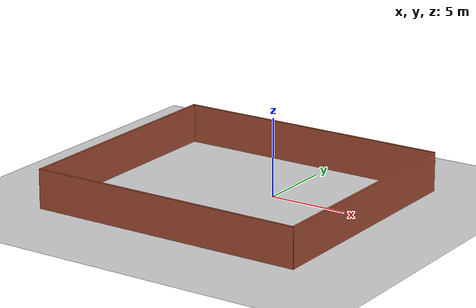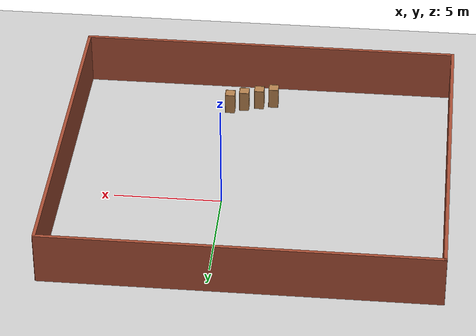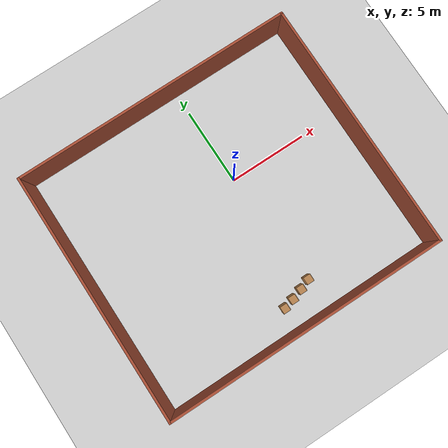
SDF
<sdf version="1.7">
 <world name="default">
  <light name="sun" type="directional">
   <pose>0 0 10 0 -0 0</pose>
   <diffuse>0.8 0.8 0.8 1</diffuse>
   <specular>0.2 0.2 0.2 1</specular>
   <attenuation>
    <range>1000</range>
    <constant>0.9</constant>
    <linear>0.01</linear>
    <quadratic>0.001</quadratic>
   </attenuation>
   <direction>-0.5 0.1 -0.9</direction>
   <spot><inner_angle>0</inner_angle><outer_angle>0</outer_angle><falloff>0</falloff></spot>
  </light>
  <model name="ground_plane">
   <static>1</static>
   <link name="link">
    <collision name="collision">
     <geometry><plane><normal>0 0 1</normal><size>100 100</size></plane></geometry>
     <surface>
      <contact><collide_bitmask>65535</collide_bitmask></contact>
      <friction><ode><mu>100</mu><mu2>50</mu2></ode></friction>
     </surface>
    </collision>
    <visual name="visual">
     <cast_shadows>0</cast_shadows>
     <geometry><plane><normal>0 0 1</normal><size>100 100</size></plane></geometry>
     <material>
      <script><uri>file://media/materials/scripts/gazebo.material</uri><name>Gazebo/Grey</name></script>
     </material>
    </visual>
   </link>
  </model>
  <gravity>0 0 -9.8</gravity>
  <magnetic_field>6e-06 2.3e-05 -4.2e-05</magnetic_field>
  <atmosphere type="adiabatic"/>
  <physics type="ode">
   <max_step_size>0.001</max_step_size>
   <real_time_factor>1</real_time_factor>
   <real_time_update_rate>1000</real_time_update_rate>
  </physics>
  <scene><ambient>0.4 0.4 0.4 1</ambient><background>0.7 0.7 0.7 1</background><shadows>1</shadows></scene>
  <spherical_coordinates>
   <surface_model>EARTH_WGS84</surface_model>
   <latitude_deg>0</latitude_deg>
   <longitude_deg>0</longitude_deg>
   <elevation>0</elevation>
   <heading_deg>0</heading_deg>
  </spherical_coordinates>
  <model name="Untitled">
   <link name="Wall_5">
    <pose>7e-06 9.7284 0 0 -0 3.14159</pose>
    <inertial>
     <mass>1</mass>
     <inertia><ixx>1</ixx><ixy>0</ixy><ixz>0</ixz><iyy>1</iyy><iyz>0</iyz><izz>1</izz></inertia>
    </inertial>
    <visual name="Wall_5_Visual">
     <pose>0 0 1.25 0 -0 0</pose>
     <geometry><box><size>18 0.15 2.5</size></box></geometry>
     <material>
      <script><uri>file://media/materials/scripts/gazebo.material</uri><name>Gazebo/Bricks</name></script>
      <ambient>1 1 1 1</ambient>
      <shader type="pixel"><normal_map>__default__</normal_map></shader>
      <diffuse>1 1 1 1</diffuse>
      <specular>0.2 0.2 0.2 1</specular>
      <emissive>0 0 0 1</emissive>
     </material>
     <meta><layer>0</layer></meta>
    </visual>
    <collision name="Wall_5_Collision">
     <pose>0 0 1.25 0 -0 0</pose>
     <geometry><box><size>16 0.15 2.5</size></box></geometry>
     <surface>
      <friction>
       <ode><mu>1</mu><mu2>1</mu2><fdir1>0 0 0</fdir1><slip1>0</slip1><slip2>0</slip2></ode>
       <torsional>
        <coefficient>1</coefficient>
        <patch_radius>0</patch_radius>
        <surface_radius>0</surface_radius>
        <use_patch_radius>1</use_patch_radius>
        <ode><slip>0</slip></ode>
       </torsional>
      </friction>
      <bounce><restitution_coefficient>0</restitution_coefficient><threshold>1e+06</threshold></bounce>
      <contact>
       <collide_without_contact>0</collide_without_contact>
       <collide_without_contact_bitmask>1</collide_without_contact_bitmask>
       <collide_bitmask>1</collide_bitmask>
       <ode>
        <soft_cfm>0</soft_cfm>
        <soft_erp>0.2</soft_erp>
        <kp>1e+13</kp>
        <kd>1</kd>
        <max_vel>0.01</max_vel>
        <min_depth>0</min_depth>
       </ode>
       <bullet>
        <split_impulse>1</split_impulse>
        <split_impulse_penetration_threshold>-0.01</split_impulse_penetration_threshold>
        <soft_cfm>0</soft_cfm>
        <soft_erp>0.2</soft_erp>
        <kp>1e+13</kp>
        <kd>1</kd>
       </bullet>
      </contact>
     </surface>
    </collision>
   </link>
   <link name="Wall_6">
    <pose>-8.93169 1.78397 0 0 0 -1.5708</pose>
    <inertial>
     <mass>1</mass>
     <inertia><ixx>1</ixx><ixy>0</ixy><ixz>0</ixz><iyy>1</iyy><iyz>0</iyz><izz>1</izz></inertia>
    </inertial>
    <visual name="Wall_6_Visual">
     <pose>0 0 1.25 0 -0 0</pose>
     <geometry><box><size>16 0.15 2.5</size></box></geometry>
     <material>
      <script><uri>file://media/materials/scripts/gazebo.material</uri><name>Gazebo/Bricks</name></script>
      <ambient>1 1 1 1</ambient>
      <shader type="pixel"><normal_map>__default__</normal_map></shader>
      <diffuse>1 1 1 1</diffuse>
      <specular>0.2 0.2 0.2 1</specular>
      <emissive>0 0 0 1</emissive>
     </material>
     <meta><layer>0</layer></meta>
    </visual>
    <collision name="Wall_6_Collision">
     <pose>0 0 1.25 0 -0 0</pose>
     <geometry><box><size>14 0.15 2.5</size></box></geometry>
     <surface>
      <friction>
       <ode><mu>1</mu><mu2>1</mu2><fdir1>0 0 0</fdir1><slip1>0</slip1><slip2>0</slip2></ode>
       <torsional>
        <coefficient>1</coefficient>
        <patch_radius>0</patch_radius>
        <surface_radius>0</surface_radius>
        <use_patch_radius>1</use_patch_radius>
        <ode><slip>0</slip></ode>
       </torsional>
      </friction>
      <bounce><restitution_coefficient>0</restitution_coefficient><threshold>1e+06</threshold></bounce>
      <contact>
       <collide_without_contact>0</collide_without_contact>
       <collide_without_contact_bitmask>1</collide_without_contact_bitmask>
       <collide_bitmask>1</collide_bitmask>
       <ode>
        <soft_cfm>0</soft_cfm>
        <soft_erp>0.2</soft_erp>
        <kp>1e+13</kp>
        <kd>1</kd>
        <max_vel>0.01</max_vel>
        <min_depth>0</min_depth>
       </ode>
       <bullet>
        <split_impulse>1</split_impulse>
        <split_impulse_penetration_threshold>-0.01</split_impulse_penetration_threshold>
        <soft_cfm>0</soft_cfm>
        <soft_erp>0.2</soft_erp>
        <kp>1e+13</kp>
        <kd>1</kd>
       </bullet>
      </contact>
     </surface>
    </collision>
   </link>
   <link name="Wall_7">
    <pose>0 -6.15167 0 0 -0 0</pose>
    <inertial>
     <mass>1</mass>
     <inertia><ixx>1</ixx><ixy>0</ixy><ixz>0</ixz><iyy>1</iyy><iyz>0</iyz><izz>1</izz></inertia>
    </inertial>
    <visual name="Wall_7_Visual">
     <pose>0 0 1.25 0 -0 0</pose>
     <geometry><box><size>18 0.15 2.5</size></box></geometry>
     <material>
      <script><uri>file://media/materials/scripts/gazebo.material</uri><name>Gazebo/Bricks</name></script>
      <ambient>1 1 1 1</ambient>
      <shader type="pixel"><normal_map>__default__</normal_map></shader>
      <diffuse>1 1 1 1</diffuse>
      <specular>0.2 0.2 0.2 1</specular>
      <emissive>0 0 0 1</emissive>
     </material>
     <meta><layer>0</layer></meta>
    </visual>
    <collision name="Wall_7_Collision">
     <pose>0 0 1.25 0 -0 0</pose>
     <geometry><box><size>16 0.15 2.5</size></box></geometry>
     <surface>
      <friction>
       <ode><mu>1</mu><mu2>1</mu2><fdir1>0 0 0</fdir1><slip1>0</slip1><slip2>0</slip2></ode>
       <torsional>
        <coefficient>1</coefficient>
        <patch_radius>0</patch_radius>
        <surface_radius>0</surface_radius>
        <use_patch_radius>1</use_patch_radius>
        <ode><slip>0</slip></ode>
       </torsional>
      </friction>
      <bounce><restitution_coefficient>0</restitution_coefficient><threshold>1e+06</threshold></bounce>
      <contact>
       <collide_without_contact>0</collide_without_contact>
       <collide_without_contact_bitmask>1</collide_without_contact_bitmask>
       <collide_bitmask>1</collide_bitmask>
       <ode>
        <soft_cfm>0</soft_cfm>
        <soft_erp>0.2</soft_erp>
        <kp>1e+13</kp>
        <kd>1</kd>
        <max_vel>0.01</max_vel>
        <min_depth>0</min_depth>
       </ode>
       <bullet>
        <split_impulse>1</split_impulse>
        <split_impulse_penetration_threshold>-0.01</split_impulse_penetration_threshold>
        <soft_cfm>0</soft_cfm>
        <soft_erp>0.2</soft_erp>
        <kp>1e+13</kp>
        <kd>1</kd>
       </bullet>
      </contact>
     </surface>
    </collision>
   </link>
   <link name="Wall_8">
    <pose>8.94145 1.78609 0 0 -0 1.5708</pose>
    <inertial>
     <mass>1</mass>
     <inertia><ixx>1</ixx><ixy>0</ixy><ixz>0</ixz><iyy>1</iyy><iyz>0</iyz><izz>1</izz></inertia>
    </inertial>
    <visual name="Wall_8_Visual">
     <pose>0 0 1.25 0 -0 0</pose>
     <geometry><box><size>16 0.15 2.5</size></box></geometry>
     <material>
      <script><uri>file://media/materials/scripts/gazebo.material</uri><name>Gazebo/Bricks</name></script>
      <ambient>1 1 1 1</ambient>
      <shader type="pixel"><normal_map>__default__</normal_map></shader>
      <diffuse>1 1 1 1</diffuse>
      <specular>0.2 0.2 0.2 1</specular>
      <emissive>0 0 0 1</emissive>
     </material>
     <meta><layer>0</layer></meta>
    </visual>
    <collision name="Wall_8_Collision">
     <pose>0 0 1.25 0 -0 0</pose>
     <geometry><box><size>14 0.15 2.5</size></box></geometry>
     <surface>
      <friction>
       <ode><mu>1</mu><mu2>1</mu2><fdir1>0 0 0</fdir1><slip1>0</slip1><slip2>0</slip2></ode>
       <torsional>
        <coefficient>1</coefficient>
        <patch_radius>0</patch_radius>
        <surface_radius>0</surface_radius>
        <use_patch_radius>1</use_patch_radius>
        <ode><slip>0</slip></ode>
       </torsional>
      </friction>
      <bounce><restitution_coefficient>0</restitution_coefficient><threshold>1e+06</threshold></bounce>
      <contact>
       <collide_without_contact>0</collide_without_contact>
       <collide_without_contact_bitmask>1</collide_without_contact_bitmask>
       <collide_bitmask>1</collide_bitmask>
       <ode>
        <soft_cfm>0</soft_cfm>
        <soft_erp>0.2</soft_erp>
        <kp>1e+13</kp>
        <kd>1</kd>
        <max_vel>0.01</max_vel>
        <min_depth>0</min_depth>
       </ode>
       <bullet>
        <split_impulse>1</split_impulse>
        <split_impulse_penetration_threshold>-0.01</split_impulse_penetration_threshold>
        <soft_cfm>0</soft_cfm>
        <soft_erp>0.2</soft_erp>
        <kp>1e+13</kp>
        <kd>1</kd>
       </bullet>
      </contact>
     </surface>
    </collision>
   </link>
   <static>1</static>
   <pose>-1.42993 -3.32043 0 0 -0 0</pose>
  </model>
  <model name="cabinet">
   <link name="cabinet_bottom_plate">
    <inertial>
     <pose>0 0 -1 0 -0 0</pose>
     <inertia><ixx>2.05</ixx><ixy>0</ixy><ixz>0</ixz><iyy>2.05</iyy><iyz>0</iyz><izz>2.05</izz></inertia>
     <mass>25</mass>
    </inertial>
    <visual name="cabinet_bottom_plate_geom_cabinet_right_plate_visual">
     <pose>0 -0.235 0.51 0 -0 0</pose>
     <geometry><box><size>0.45 0.02 1.02</size></box></geometry>
     <material>
      <script><uri>file://media/materials/scripts/gazebo.material</uri><name>Gazebo/Wood</name></script>
      <shader type="pixel"/>
     </material>
    </visual>
    <visual name="cabinet_bottom_plate_geom_cabinet_middle_plate_visual">
     <pose>0 0 0.51 0 -0 0</pose>
     <geometry><box><size>0.45 0.45 0.02</size></box></geometry>
     <material>
      <script><uri>file://media/materials/scripts/gazebo.material</uri><name>Gazebo/Wood</name></script>
      <shader type="pixel"/>
     </material>
    </visual>
    <visual name="cabinet_bottom_plate_geom_cabinet_left_plate_visual">
     <pose>0 0.235 0.51 0 -0 0</pose>
     <geometry><box><size>0.45 0.02 1.02</size></box></geometry>
     <material>
      <script><uri>file://media/materials/scripts/gazebo.material</uri><name>Gazebo/Wood</name></script>
      <shader type="pixel"/>
     </material>
    </visual>
    <visual name="cabinet_bottom_plate_geom_cabinet_back_plate_visual">
     <pose>0.235 0 0.51 0 -0 0</pose>
     <geometry><box><size>0.02 0.45 1.02</size></box></geometry>
     <material>
      <script><uri>file://media/materials/scripts/gazebo.material</uri><name>Gazebo/Wood</name></script>
      <shader type="pixel"/>
     </material>
    </visual>
    <visual name="cabinet_bottom_plate_geom_visual">
     <pose>0 0 0.01 0 -0 0</pose>
     <geometry><box><size>0.45 0.45 0.02</size></box></geometry>
     <material>
      <script><uri>file://media/materials/scripts/gazebo.material</uri><name>Gazebo/Wood</name></script>
      <shader type="pixel"/>
     </material>
    </visual>
    <visual name="cabinet_bottom_plate_geom_cabinet_top_plate_visual">
     <pose>0 0 1.01 0 -0 0</pose>
     <geometry><box><size>0.45 0.45 0.02</size></box></geometry>
     <material>
      <script><uri>file://media/materials/scripts/gazebo.material</uri><name>Gazebo/Wood</name></script>
      <shader type="pixel"/>
     </material>
    </visual>
    <collision name="cabinet_bottom_plate_geom_cabinet_left_plate">
     <pose>0 0.235 0.51 0 -0 0</pose>
     <geometry><box><size>0.45 0.02 1.02</size></box></geometry>
     <surface>
      <friction>
       <ode><mu>1</mu><mu2>1</mu2><fdir1>0 0 0</fdir1><slip1>0</slip1><slip2>0</slip2></ode>
       <torsional>
        <coefficient>1</coefficient>
        <patch_radius>0</patch_radius>
        <surface_radius>0</surface_radius>
        <use_patch_radius>1</use_patch_radius>
        <ode><slip>0</slip></ode>
       </torsional>
      </friction>
      <bounce><restitution_coefficient>0</restitution_coefficient><threshold>1e+06</threshold></bounce>
      <contact>
       <collide_without_contact>0</collide_without_contact>
       <collide_without_contact_bitmask>1</collide_without_contact_bitmask>
       <collide_bitmask>1</collide_bitmask>
       <ode>
        <soft_cfm>0</soft_cfm>
        <soft_erp>0.2</soft_erp>
        <kp>1e+13</kp>
        <kd>1</kd>
        <max_vel>0.01</max_vel>
        <min_depth>0</min_depth>
       </ode>
       <bullet>
        <split_impulse>1</split_impulse>
        <split_impulse_penetration_threshold>-0.01</split_impulse_penetration_threshold>
        <soft_cfm>0</soft_cfm>
        <soft_erp>0.2</soft_erp>
        <kp>1e+13</kp>
        <kd>1</kd>
       </bullet>
      </contact>
     </surface>
    </collision>
    <collision name="cabinet_bottom_plate_geom_cabinet_right_plate">
     <pose>0 -0.235 0.51 0 -0 0</pose>
     <geometry><box><size>0.45 0.02 1.02</size></box></geometry>
     <surface>
      <friction>
       <ode><mu>1</mu><mu2>1</mu2><fdir1>0 0 0</fdir1><slip1>0</slip1><slip2>0</slip2></ode>
       <torsional>
        <coefficient>1</coefficient>
        <patch_radius>0</patch_radius>
        <surface_radius>0</surface_radius>
        <use_patch_radius>1</use_patch_radius>
        <ode><slip>0</slip></ode>
       </torsional>
      </friction>
      <bounce><restitution_coefficient>0</restitution_coefficient><threshold>1e+06</threshold></bounce>
      <contact>
       <collide_without_contact>0</collide_without_contact>
       <collide_without_contact_bitmask>1</collide_without_contact_bitmask>
       <collide_bitmask>1</collide_bitmask>
       <ode>
        <soft_cfm>0</soft_cfm>
        <soft_erp>0.2</soft_erp>
        <kp>1e+13</kp>
        <kd>1</kd>
        <max_vel>0.01</max_vel>
        <min_depth>0</min_depth>
       </ode>
       <bullet>
        <split_impulse>1</split_impulse>
        <split_impulse_penetration_threshold>-0.01</split_impulse_penetration_threshold>
        <soft_cfm>0</soft_cfm>
        <soft_erp>0.2</soft_erp>
        <kp>1e+13</kp>
        <kd>1</kd>
       </bullet>
      </contact>
     </surface>
    </collision>
    <collision name="cabinet_bottom_plate_geom">
     <pose>0 0 0.01 0 -0 0</pose>
     <geometry><box><size>0.45 0.45 0.02</size></box></geometry>
     <surface>
      <friction>
       <ode><mu>1</mu><mu2>1</mu2><fdir1>0 0 0</fdir1><slip1>0</slip1><slip2>0</slip2></ode>
       <torsional>
        <coefficient>1</coefficient>
        <patch_radius>0</patch_radius>
        <surface_radius>0</surface_radius>
        <use_patch_radius>1</use_patch_radius>
        <ode><slip>0</slip></ode>
       </torsional>
      </friction>
      <bounce><restitution_coefficient>0</restitution_coefficient><threshold>1e+06</threshold></bounce>
      <contact>
       <collide_without_contact>0</collide_without_contact>
       <collide_without_contact_bitmask>1</collide_without_contact_bitmask>
       <collide_bitmask>1</collide_bitmask>
       <ode>
        <soft_cfm>0</soft_cfm>
        <soft_erp>0.2</soft_erp>
        <kp>1e+13</kp>
        <kd>1</kd>
        <max_vel>0.01</max_vel>
        <min_depth>0</min_depth>
       </ode>
       <bullet>
        <split_impulse>1</split_impulse>
        <split_impulse_penetration_threshold>-0.01</split_impulse_penetration_threshold>
        <soft_cfm>0</soft_cfm>
        <soft_erp>0.2</soft_erp>
        <kp>1e+13</kp>
        <kd>1</kd>
       </bullet>
      </contact>
     </surface>
    </collision>
    <collision name="cabinet_bottom_plate_geom_cabinet_middle_plate">
     <pose>0 0 0.51 0 -0 0</pose>
     <geometry><box><size>0.45 0.45 0.02</size></box></geometry>
     <surface>
      <friction>
       <ode><mu>1</mu><mu2>1</mu2><fdir1>0 0 0</fdir1><slip1>0</slip1><slip2>0</slip2></ode>
       <torsional>
        <coefficient>1</coefficient>
        <patch_radius>0</patch_radius>
        <surface_radius>0</surface_radius>
        <use_patch_radius>1</use_patch_radius>
        <ode><slip>0</slip></ode>
       </torsional>
      </friction>
      <bounce><restitution_coefficient>0</restitution_coefficient><threshold>1e+06</threshold></bounce>
      <contact>
       <collide_without_contact>0</collide_without_contact>
       <collide_without_contact_bitmask>1</collide_without_contact_bitmask>
       <collide_bitmask>1</collide_bitmask>
       <ode>
        <soft_cfm>0</soft_cfm>
        <soft_erp>0.2</soft_erp>
        <kp>1e+13</kp>
        <kd>1</kd>
        <max_vel>0.01</max_vel>
        <min_depth>0</min_depth>
       </ode>
       <bullet>
        <split_impulse>1</split_impulse>
        <split_impulse_penetration_threshold>-0.01</split_impulse_penetration_threshold>
        <soft_cfm>0</soft_cfm>
        <soft_erp>0.2</soft_erp>
        <kp>1e+13</kp>
        <kd>1</kd>
       </bullet>
      </contact>
     </surface>
    </collision>
    <collision name="cabinet_bottom_plate_geom_cabinet_top_plate">
     <pose>0 0 1.01 0 -0 0</pose>
     <geometry><box><size>0.45 0.45 0.02</size></box></geometry>
     <surface>
      <friction>
       <ode><mu>1</mu><mu2>1</mu2><fdir1>0 0 0</fdir1><slip1>0</slip1><slip2>0</slip2></ode>
       <torsional>
        <coefficient>1</coefficient>
        <patch_radius>0</patch_radius>
        <surface_radius>0</surface_radius>
        <use_patch_radius>1</use_patch_radius>
        <ode><slip>0</slip></ode>
       </torsional>
      </friction>
      <bounce><restitution_coefficient>0</restitution_coefficient><threshold>1e+06</threshold></bounce>
      <contact>
       <collide_without_contact>0</collide_without_contact>
       <collide_without_contact_bitmask>1</collide_without_contact_bitmask>
       <collide_bitmask>1</collide_bitmask>
       <ode>
        <soft_cfm>0</soft_cfm>
        <soft_erp>0.2</soft_erp>
        <kp>1e+13</kp>
        <kd>1</kd>
        <max_vel>0.01</max_vel>
        <min_depth>0</min_depth>
       </ode>
       <bullet>
        <split_impulse>1</split_impulse>
        <split_impulse_penetration_threshold>-0.01</split_impulse_penetration_threshold>
        <soft_cfm>0</soft_cfm>
        <soft_erp>0.2</soft_erp>
        <kp>1e+13</kp>
        <kd>1</kd>
       </bullet>
      </contact>
     </surface>
    </collision>
    <collision name="cabinet_bottom_plate_geom_cabinet_back_plate">
     <pose>0.235 0 0.51 0 -0 0</pose>
     <geometry><box><size>0.02 0.45 1.02</size></box></geometry>
     <surface>
      <friction>
       <ode><mu>1</mu><mu2>1</mu2><fdir1>0 0 0</fdir1><slip1>0</slip1><slip2>0</slip2></ode>
       <torsional>
        <coefficient>1</coefficient>
        <patch_radius>0</patch_radius>
        <surface_radius>0</surface_radius>
        <use_patch_radius>1</use_patch_radius>
        <ode><slip>0</slip></ode>
       </torsional>
      </friction>
      <bounce><restitution_coefficient>0</restitution_coefficient><threshold>1e+06</threshold></bounce>
      <contact>
       <collide_without_contact>0</collide_without_contact>
       <collide_without_contact_bitmask>1</collide_without_contact_bitmask>
       <collide_bitmask>1</collide_bitmask>
       <ode>
        <soft_cfm>0</soft_cfm>
        <soft_erp>0.2</soft_erp>
        <kp>1e+13</kp>
        <kd>1</kd>
        <max_vel>0.01</max_vel>
        <min_depth>0</min_depth>
       </ode>
       <bullet>
        <split_impulse>1</split_impulse>
        <split_impulse_penetration_threshold>-0.01</split_impulse_penetration_threshold>
        <soft_cfm>0</soft_cfm>
        <soft_erp>0.2</soft_erp>
        <kp>1e+13</kp>
        <kd>1</kd>
       </bullet>
      </contact>
     </surface>
    </collision>
   </link>
   <static>1</static>
   <pose>-1.73964 -8.00551 0 0 -0 0</pose>
  </model>
  <model name="cabinet_clone">
   <link name="cabinet_bottom_plate">
    <inertial>
     <pose>0 0 -1 0 -0 0</pose>
     <inertia><ixx>2.05</ixx><ixy>0</ixy><ixz>0</ixz><iyy>2.05</iyy><iyz>0</iyz><izz>2.05</izz></inertia>
     <mass>25</mass>
    </inertial>
    <visual name="cabinet_bottom_plate_geom_cabinet_right_plate_visual">
     <pose>0 -0.235 0.51 0 -0 0</pose>
     <geometry><box><size>0.45 0.02 1.02</size></box></geometry>
     <material>
      <script><uri>file://media/materials/scripts/gazebo.material</uri><name>Gazebo/Wood</name></script>
      <shader type="pixel"/>
     </material>
    </visual>
    <visual name="cabinet_bottom_plate_geom_cabinet_middle_plate_visual">
     <pose>0 0 0.51 0 -0 0</pose>
     <geometry><box><size>0.45 0.45 0.02</size></box></geometry>
     <material>
      <script><uri>file://media/materials/scripts/gazebo.material</uri><name>Gazebo/Wood</name></script>
      <shader type="pixel"/>
     </material>
    </visual>
    <visual name="cabinet_bottom_plate_geom_cabinet_left_plate_visual">
     <pose>0 0.235 0.51 0 -0 0</pose>
     <geometry><box><size>0.45 0.02 1.02</size></box></geometry>
     <material>
      <script><uri>file://media/materials/scripts/gazebo.material</uri><name>Gazebo/Wood</name></script>
      <shader type="pixel"/>
     </material>
    </visual>
    <visual name="cabinet_bottom_plate_geom_cabinet_back_plate_visual">
     <pose>0.235 0 0.51 0 -0 0</pose>
     <geometry><box><size>0.02 0.45 1.02</size></box></geometry>
     <material>
      <script><uri>file://media/materials/scripts/gazebo.material</uri><name>Gazebo/Wood</name></script>
      <shader type="pixel"/>
     </material>
    </visual>
    <visual name="cabinet_bottom_plate_geom_visual">
     <pose>0 0 0.01 0 -0 0</pose>
     <geometry><box><size>0.45 0.45 0.02</size></box></geometry>
     <material>
      <script><uri>file://media/materials/scripts/gazebo.material</uri><name>Gazebo/Wood</name></script>
      <shader type="pixel"/>
     </material>
    </visual>
    <visual name="cabinet_bottom_plate_geom_cabinet_top_plate_visual">
     <pose>0 0 1.01 0 -0 0</pose>
     <geometry><box><size>0.45 0.45 0.02</size></box></geometry>
     <material>
      <script><uri>file://media/materials/scripts/gazebo.material</uri><name>Gazebo/Wood</name></script>
      <shader type="pixel"/>
     </material>
    </visual>
    <collision name="cabinet_bottom_plate_geom_cabinet_left_plate">
     <pose>0 0.235 0.51 0 -0 0</pose>
     <geometry><box><size>0.45 0.02 1.02</size></box></geometry>
     <surface>
      <friction>
       <ode><mu>1</mu><mu2>1</mu2><fdir1>0 0 0</fdir1><slip1>0</slip1><slip2>0</slip2></ode>
       <torsional>
        <coefficient>1</coefficient>
        <patch_radius>0</patch_radius>
        <surface_radius>0</surface_radius>
        <use_patch_radius>1</use_patch_radius>
        <ode><slip>0</slip></ode>
       </torsional>
      </friction>
      <bounce><restitution_coefficient>0</restitution_coefficient><threshold>1e+06</threshold></bounce>
      <contact>
       <collide_without_contact>0</collide_without_contact>
       <collide_without_contact_bitmask>1</collide_without_contact_bitmask>
       <collide_bitmask>1</collide_bitmask>
       <ode>
        <soft_cfm>0</soft_cfm>
        <soft_erp>0.2</soft_erp>
        <kp>1e+13</kp>
        <kd>1</kd>
        <max_vel>0.01</max_vel>
        <min_depth>0</min_depth>
       </ode>
       <bullet>
        <split_impulse>1</split_impulse>
        <split_impulse_penetration_threshold>-0.01</split_impulse_penetration_threshold>
        <soft_cfm>0</soft_cfm>
        <soft_erp>0.2</soft_erp>
        <kp>1e+13</kp>
        <kd>1</kd>
       </bullet>
      </contact>
     </surface>
    </collision>
    <collision name="cabinet_bottom_plate_geom_cabinet_right_plate">
     <pose>0 -0.235 0.51 0 -0 0</pose>
     <geometry><box><size>0.45 0.02 1.02</size></box></geometry>
     <surface>
      <friction>
       <ode><mu>1</mu><mu2>1</mu2><fdir1>0 0 0</fdir1><slip1>0</slip1><slip2>0</slip2></ode>
       <torsional>
        <coefficient>1</coefficient>
        <patch_radius>0</patch_radius>
        <surface_radius>0</surface_radius>
        <use_patch_radius>1</use_patch_radius>
        <ode><slip>0</slip></ode>
       </torsional>
      </friction>
      <bounce><restitution_coefficient>0</restitution_coefficient><threshold>1e+06</threshold></bounce>
      <contact>
       <collide_without_contact>0</collide_without_contact>
       <collide_without_contact_bitmask>1</collide_without_contact_bitmask>
       <collide_bitmask>1</collide_bitmask>
       <ode>
        <soft_cfm>0</soft_cfm>
        <soft_erp>0.2</soft_erp>
        <kp>1e+13</kp>
        <kd>1</kd>
        <max_vel>0.01</max_vel>
        <min_depth>0</min_depth>
       </ode>
       <bullet>
        <split_impulse>1</split_impulse>
        <split_impulse_penetration_threshold>-0.01</split_impulse_penetration_threshold>
        <soft_cfm>0</soft_cfm>
        <soft_erp>0.2</soft_erp>
        <kp>1e+13</kp>
        <kd>1</kd>
       </bullet>
      </contact>
     </surface>
    </collision>
    <collision name="cabinet_bottom_plate_geom">
     <pose>0 0 0.01 0 -0 0</pose>
     <geometry><box><size>0.45 0.45 0.02</size></box></geometry>
     <surface>
      <friction>
       <ode><mu>1</mu><mu2>1</mu2><fdir1>0 0 0</fdir1><slip1>0</slip1><slip2>0</slip2></ode>
       <torsional>
        <coefficient>1</coefficient>
        <patch_radius>0</patch_radius>
        <surface_radius>0</surface_radius>
        <use_patch_radius>1</use_patch_radius>
        <ode><slip>0</slip></ode>
       </torsional>
      </friction>
      <bounce><restitution_coefficient>0</restitution_coefficient><threshold>1e+06</threshold></bounce>
      <contact>
       <collide_without_contact>0</collide_without_contact>
       <collide_without_contact_bitmask>1</collide_without_contact_bitmask>
       <collide_bitmask>1</collide_bitmask>
       <ode>
        <soft_cfm>0</soft_cfm>
        <soft_erp>0.2</soft_erp>
        <kp>1e+13</kp>
        <kd>1</kd>
        <max_vel>0.01</max_vel>
        <min_depth>0</min_depth>
       </ode>
       <bullet>
        <split_impulse>1</split_impulse>
        <split_impulse_penetration_threshold>-0.01</split_impulse_penetration_threshold>
        <soft_cfm>0</soft_cfm>
        <soft_erp>0.2</soft_erp>
        <kp>1e+13</kp>
        <kd>1</kd>
       </bullet>
      </contact>
     </surface>
    </collision>
    <collision name="cabinet_bottom_plate_geom_cabinet_middle_plate">
     <pose>0 0 0.51 0 -0 0</pose>
     <geometry><box><size>0.45 0.45 0.02</size></box></geometry>
     <surface>
      <friction>
       <ode><mu>1</mu><mu2>1</mu2><fdir1>0 0 0</fdir1><slip1>0</slip1><slip2>0</slip2></ode>
       <torsional>
        <coefficient>1</coefficient>
        <patch_radius>0</patch_radius>
        <surface_radius>0</surface_radius>
        <use_patch_radius>1</use_patch_radius>
        <ode><slip>0</slip></ode>
       </torsional>
      </friction>
      <bounce><restitution_coefficient>0</restitution_coefficient><threshold>1e+06</threshold></bounce>
      <contact>
       <collide_without_contact>0</collide_without_contact>
       <collide_without_contact_bitmask>1</collide_without_contact_bitmask>
       <collide_bitmask>1</collide_bitmask>
       <ode>
        <soft_cfm>0</soft_cfm>
        <soft_erp>0.2</soft_erp>
        <kp>1e+13</kp>
        <kd>1</kd>
        <max_vel>0.01</max_vel>
        <min_depth>0</min_depth>
       </ode>
       <bullet>
        <split_impulse>1</split_impulse>
        <split_impulse_penetration_threshold>-0.01</split_impulse_penetration_threshold>
        <soft_cfm>0</soft_cfm>
        <soft_erp>0.2</soft_erp>
        <kp>1e+13</kp>
        <kd>1</kd>
       </bullet>
      </contact>
     </surface>
    </collision>
    <collision name="cabinet_bottom_plate_geom_cabinet_top_plate">
     <pose>0 0 1.01 0 -0 0</pose>
     <geometry><box><size>0.45 0.45 0.02</size></box></geometry>
     <surface>
      <friction>
       <ode><mu>1</mu><mu2>1</mu2><fdir1>0 0 0</fdir1><slip1>0</slip1><slip2>0</slip2></ode>
       <torsional>
        <coefficient>1</coefficient>
        <patch_radius>0</patch_radius>
        <surface_radius>0</surface_radius>
        <use_patch_radius>1</use_patch_radius>
        <ode><slip>0</slip></ode>
       </torsional>
      </friction>
      <bounce><restitution_coefficient>0</restitution_coefficient><threshold>1e+06</threshold></bounce>
      <contact>
       <collide_without_contact>0</collide_without_contact>
       <collide_without_contact_bitmask>1</collide_without_contact_bitmask>
       <collide_bitmask>1</collide_bitmask>
       <ode>
        <soft_cfm>0</soft_cfm>
        <soft_erp>0.2</soft_erp>
        <kp>1e+13</kp>
        <kd>1</kd>
        <max_vel>0.01</max_vel>
        <min_depth>0</min_depth>
       </ode>
       <bullet>
        <split_impulse>1</split_impulse>
        <split_impulse_penetration_threshold>-0.01</split_impulse_penetration_threshold>
        <soft_cfm>0</soft_cfm>
        <soft_erp>0.2</soft_erp>
        <kp>1e+13</kp>
        <kd>1</kd>
       </bullet>
      </contact>
     </surface>
    </collision>
    <collision name="cabinet_bottom_plate_geom_cabinet_back_plate">
     <pose>0.235 0 0.51 0 -0 0</pose>
     <geometry><box><size>0.02 0.45 1.02</size></box></geometry>
     <surface>
      <friction>
       <ode><mu>1</mu><mu2>1</mu2><fdir1>0 0 0</fdir1><slip1>0</slip1><slip2>0</slip2></ode>
       <torsional>
        <coefficient>1</coefficient>
        <patch_radius>0</patch_radius>
        <surface_radius>0</surface_radius>
        <use_patch_radius>1</use_patch_radius>
        <ode><slip>0</slip></ode>
       </torsional>
      </friction>
      <bounce><restitution_coefficient>0</restitution_coefficient><threshold>1e+06</threshold></bounce>
      <contact>
       <collide_without_contact>0</collide_without_contact>
       <collide_without_contact_bitmask>1</collide_without_contact_bitmask>
       <collide_bitmask>1</collide_bitmask>
       <ode>
        <soft_cfm>0</soft_cfm>
        <soft_erp>0.2</soft_erp>
        <kp>1e+13</kp>
        <kd>1</kd>
        <max_vel>0.01</max_vel>
        <min_depth>0</min_depth>
       </ode>
       <bullet>
        <split_impulse>1</split_impulse>
        <split_impulse_penetration_threshold>-0.01</split_impulse_penetration_threshold>
        <soft_cfm>0</soft_cfm>
        <soft_erp>0.2</soft_erp>
        <kp>1e+13</kp>
        <kd>1</kd>
       </bullet>
      </contact>
     </surface>
    </collision>
   </link>
   <static>1</static>
   <pose>-1.05068 -7.82599 0 0 -0 0</pose>
  </model>
  <model name="cabinet_clone_0">
   <link name="cabinet_bottom_plate">
    <inertial>
     <pose>0 0 -1 0 -0 0</pose>
     <inertia><ixx>2.05</ixx><ixy>0</ixy><ixz>0</ixz><iyy>2.05</iyy><iyz>0</iyz><izz>2.05</izz></inertia>
     <mass>25</mass>
    </inertial>
    <visual name="cabinet_bottom_plate_geom_cabinet_right_plate_visual">
     <pose>0 -0.235 0.51 0 -0 0</pose>
     <geometry><box><size>0.45 0.02 1.02</size></box></geometry>
     <material>
      <script><uri>file://media/materials/scripts/gazebo.material</uri><name>Gazebo/Wood</name></script>
      <shader type="pixel"/>
     </material>
    </visual>
    <visual name="cabinet_bottom_plate_geom_cabinet_middle_plate_visual">
     <pose>0 0 0.51 0 -0 0</pose>
     <geometry><box><size>0.45 0.45 0.02</size></box></geometry>
     <material>
      <script><uri>file://media/materials/scripts/gazebo.material</uri><name>Gazebo/Wood</name></script>
      <shader type="pixel"/>
     </material>
    </visual>
    <visual name="cabinet_bottom_plate_geom_cabinet_left_plate_visual">
     <pose>0 0.235 0.51 0 -0 0</pose>
     <geometry><box><size>0.45 0.02 1.02</size></box></geometry>
     <material>
      <script><uri>file://media/materials/scripts/gazebo.material</uri><name>Gazebo/Wood</name></script>
      <shader type="pixel"/>
     </material>
    </visual>
    <visual name="cabinet_bottom_plate_geom_cabinet_back_plate_visual">
     <pose>0.235 0 0.51 0 -0 0</pose>
     <geometry><box><size>0.02 0.45 1.02</size></box></geometry>
     <material>
      <script><uri>file://media/materials/scripts/gazebo.material</uri><name>Gazebo/Wood</name></script>
      <shader type="pixel"/>
     </material>
    </visual>
    <visual name="cabinet_bottom_plate_geom_visual">
     <pose>0 0 0.01 0 -0 0</pose>
     <geometry><box><size>0.45 0.45 0.02</size></box></geometry>
     <material>
      <script><uri>file://media/materials/scripts/gazebo.material</uri><name>Gazebo/Wood</name></script>
      <shader type="pixel"/>
     </material>
    </visual>
    <visual name="cabinet_bottom_plate_geom_cabinet_top_plate_visual">
     <pose>0 0 1.01 0 -0 0</pose>
     <geometry><box><size>0.45 0.45 0.02</size></box></geometry>
     <material>
      <script><uri>file://media/materials/scripts/gazebo.material</uri><name>Gazebo/Wood</name></script>
      <shader type="pixel"/>
     </material>
    </visual>
    <collision name="cabinet_bottom_plate_geom_cabinet_left_plate">
     <pose>0 0.235 0.51 0 -0 0</pose>
     <geometry><box><size>0.45 0.02 1.02</size></box></geometry>
     <surface>
      <friction>
       <ode><mu>1</mu><mu2>1</mu2><fdir1>0 0 0</fdir1><slip1>0</slip1><slip2>0</slip2></ode>
       <torsional>
        <coefficient>1</coefficient>
        <patch_radius>0</patch_radius>
        <surface_radius>0</surface_radius>
        <use_patch_radius>1</use_patch_radius>
        <ode><slip>0</slip></ode>
       </torsional>
      </friction>
      <bounce><restitution_coefficient>0</restitution_coefficient><threshold>1e+06</threshold></bounce>
      <contact>
       <collide_without_contact>0</collide_without_contact>
       <collide_without_contact_bitmask>1</collide_without_contact_bitmask>
       <collide_bitmask>1</collide_bitmask>
       <ode>
        <soft_cfm>0</soft_cfm>
        <soft_erp>0.2</soft_erp>
        <kp>1e+13</kp>
        <kd>1</kd>
        <max_vel>0.01</max_vel>
        <min_depth>0</min_depth>
       </ode>
       <bullet>
        <split_impulse>1</split_impulse>
        <split_impulse_penetration_threshold>-0.01</split_impulse_penetration_threshold>
        <soft_cfm>0</soft_cfm>
        <soft_erp>0.2</soft_erp>
        <kp>1e+13</kp>
        <kd>1</kd>
       </bullet>
      </contact>
     </surface>
    </collision>
    <collision name="cabinet_bottom_plate_geom_cabinet_right_plate">
     <pose>0 -0.235 0.51 0 -0 0</pose>
     <geometry><box><size>0.45 0.02 1.02</size></box></geometry>
     <surface>
      <friction>
       <ode><mu>1</mu><mu2>1</mu2><fdir1>0 0 0</fdir1><slip1>0</slip1><slip2>0</slip2></ode>
       <torsional>
        <coefficient>1</coefficient>
        <patch_radius>0</patch_radius>
        <surface_radius>0</surface_radius>
        <use_patch_radius>1</use_patch_radius>
        <ode><slip>0</slip></ode>
       </torsional>
      </friction>
      <bounce><restitution_coefficient>0</restitution_coefficient><threshold>1e+06</threshold></bounce>
      <contact>
       <collide_without_contact>0</collide_without_contact>
       <collide_without_contact_bitmask>1</collide_without_contact_bitmask>
       <collide_bitmask>1</collide_bitmask>
       <ode>
        <soft_cfm>0</soft_cfm>
        <soft_erp>0.2</soft_erp>
        <kp>1e+13</kp>
        <kd>1</kd>
        <max_vel>0.01</max_vel>
        <min_depth>0</min_depth>
       </ode>
       <bullet>
        <split_impulse>1</split_impulse>
        <split_impulse_penetration_threshold>-0.01</split_impulse_penetration_threshold>
        <soft_cfm>0</soft_cfm>
        <soft_erp>0.2</soft_erp>
        <kp>1e+13</kp>
        <kd>1</kd>
       </bullet>
      </contact>
     </surface>
    </collision>
    <collision name="cabinet_bottom_plate_geom">
     <pose>0 0 0.01 0 -0 0</pose>
     <geometry><box><size>0.45 0.45 0.02</size></box></geometry>
     <surface>
      <friction>
       <ode><mu>1</mu><mu2>1</mu2><fdir1>0 0 0</fdir1><slip1>0</slip1><slip2>0</slip2></ode>
       <torsional>
        <coefficient>1</coefficient>
        <patch_radius>0</patch_radius>
        <surface_radius>0</surface_radius>
        <use_patch_radius>1</use_patch_radius>
        <ode><slip>0</slip></ode>
       </torsional>
      </friction>
      <bounce><restitution_coefficient>0</restitution_coefficient><threshold>1e+06</threshold></bounce>
      <contact>
       <collide_without_contact>0</collide_without_contact>
       <collide_without_contact_bitmask>1</collide_without_contact_bitmask>
       <collide_bitmask>1</collide_bitmask>
       <ode>
        <soft_cfm>0</soft_cfm>
        <soft_erp>0.2</soft_erp>
        <kp>1e+13</kp>
        <kd>1</kd>
        <max_vel>0.01</max_vel>
        <min_depth>0</min_depth>
       </ode>
       <bullet>
        <split_impulse>1</split_impulse>
        <split_impulse_penetration_threshold>-0.01</split_impulse_penetration_threshold>
        <soft_cfm>0</soft_cfm>
        <soft_erp>0.2</soft_erp>
        <kp>1e+13</kp>
        <kd>1</kd>
       </bullet>
      </contact>
     </surface>
    </collision>
    <collision name="cabinet_bottom_plate_geom_cabinet_middle_plate">
     <pose>0 0 0.51 0 -0 0</pose>
     <geometry><box><size>0.45 0.45 0.02</size></box></geometry>
     <surface>
      <friction>
       <ode><mu>1</mu><mu2>1</mu2><fdir1>0 0 0</fdir1><slip1>0</slip1><slip2>0</slip2></ode>
       <torsional>
        <coefficient>1</coefficient>
        <patch_radius>0</patch_radius>
        <surface_radius>0</surface_radius>
        <use_patch_radius>1</use_patch_radius>
        <ode><slip>0</slip></ode>
       </torsional>
      </friction>
      <bounce><restitution_coefficient>0</restitution_coefficient><threshold>1e+06</threshold></bounce>
      <contact>
       <collide_without_contact>0</collide_without_contact>
       <collide_without_contact_bitmask>1</collide_without_contact_bitmask>
       <collide_bitmask>1</collide_bitmask>
       <ode>
        <soft_cfm>0</soft_cfm>
        <soft_erp>0.2</soft_erp>
        <kp>1e+13</kp>
        <kd>1</kd>
        <max_vel>0.01</max_vel>
        <min_depth>0</min_depth>
       </ode>
       <bullet>
        <split_impulse>1</split_impulse>
        <split_impulse_penetration_threshold>-0.01</split_impulse_penetration_threshold>
        <soft_cfm>0</soft_cfm>
        <soft_erp>0.2</soft_erp>
        <kp>1e+13</kp>
        <kd>1</kd>
       </bullet>
      </contact>
     </surface>
    </collision>
    <collision name="cabinet_bottom_plate_geom_cabinet_top_plate">
     <pose>0 0 1.01 0 -0 0</pose>
     <geometry><box><size>0.45 0.45 0.02</size></box></geometry>
     <surface>
      <friction>
       <ode><mu>1</mu><mu2>1</mu2><fdir1>0 0 0</fdir1><slip1>0</slip1><slip2>0</slip2></ode>
       <torsional>
        <coefficient>1</coefficient>
        <patch_radius>0</patch_radius>
        <surface_radius>0</surface_radius>
        <use_patch_radius>1</use_patch_radius>
        <ode><slip>0</slip></ode>
       </torsional>
      </friction>
      <bounce><restitution_coefficient>0</restitution_coefficient><threshold>1e+06</threshold></bounce>
      <contact>
       <collide_without_contact>0</collide_without_contact>
       <collide_without_contact_bitmask>1</collide_without_contact_bitmask>
       <collide_bitmask>1</collide_bitmask>
       <ode>
        <soft_cfm>0</soft_cfm>
        <soft_erp>0.2</soft_erp>
        <kp>1e+13</kp>
        <kd>1</kd>
        <max_vel>0.01</max_vel>
        <min_depth>0</min_depth>
       </ode>
       <bullet>
        <split_impulse>1</split_impulse>
        <split_impulse_penetration_threshold>-0.01</split_impulse_penetration_threshold>
        <soft_cfm>0</soft_cfm>
        <soft_erp>0.2</soft_erp>
        <kp>1e+13</kp>
        <kd>1</kd>
       </bullet>
      </contact>
     </surface>
    </collision>
    <collision name="cabinet_bottom_plate_geom_cabinet_back_plate">
     <pose>0.235 0 0.51 0 -0 0</pose>
     <geometry><box><size>0.02 0.45 1.02</size></box></geometry>
     <surface>
      <friction>
       <ode><mu>1</mu><mu2>1</mu2><fdir1>0 0 0</fdir1><slip1>0</slip1><slip2>0</slip2></ode>
       <torsional>
        <coefficient>1</coefficient>
        <patch_radius>0</patch_radius>
        <surface_radius>0</surface_radius>
        <use_patch_radius>1</use_patch_radius>
        <ode><slip>0</slip></ode>
       </torsional>
      </friction>
      <bounce><restitution_coefficient>0</restitution_coefficient><threshold>1e+06</threshold></bounce>
      <contact>
       <collide_without_contact>0</collide_without_contact>
       <collide_without_contact_bitmask>1</collide_without_contact_bitmask>
       <collide_bitmask>1</collide_bitmask>
       <ode>
        <soft_cfm>0</soft_cfm>
        <soft_erp>0.2</soft_erp>
        <kp>1e+13</kp>
        <kd>1</kd>
        <max_vel>0.01</max_vel>
        <min_depth>0</min_depth>
       </ode>
       <bullet>
        <split_impulse>1</split_impulse>
        <split_impulse_penetration_threshold>-0.01</split_impulse_penetration_threshold>
        <soft_cfm>0</soft_cfm>
        <soft_erp>0.2</soft_erp>
        <kp>1e+13</kp>
        <kd>1</kd>
       </bullet>
      </contact>
     </surface>
    </collision>
   </link>
   <static>1</static>
   <pose>-0.336451 -7.60738 0 0 -0 0</pose>
  </model>
  <model name="cabinet_clone_1">
   <link name="cabinet_bottom_plate">
    <inertial>
     <pose>0 0 -1 0 -0 0</pose>
     <inertia><ixx>2.05</ixx><ixy>0</ixy><ixz>0</ixz><iyy>2.05</iyy><iyz>0</iyz><izz>2.05</izz></inertia>
     <mass>25</mass>
    </inertial>
    <visual name="cabinet_bottom_plate_geom_cabinet_right_plate_visual">
     <pose>0 -0.235 0.51 0 -0 0</pose>
     <geometry><box><size>0.45 0.02 1.02</size></box></geometry>
     <material>
      <script><uri>file://media/materials/scripts/gazebo.material</uri><name>Gazebo/Wood</name></script>
      <shader type="pixel"/>
     </material>
    </visual>
    <visual name="cabinet_bottom_plate_geom_cabinet_middle_plate_visual">
     <pose>0 0 0.51 0 -0 0</pose>
     <geometry><box><size>0.45 0.45 0.02</size></box></geometry>
     <material>
      <script><uri>file://media/materials/scripts/gazebo.material</uri><name>Gazebo/Wood</name></script>
      <shader type="pixel"/>
     </material>
    </visual>
    <visual name="cabinet_bottom_plate_geom_cabinet_left_plate_visual">
     <pose>0 0.235 0.51 0 -0 0</pose>
     <geometry><box><size>0.45 0.02 1.02</size></box></geometry>
     <material>
      <script><uri>file://media/materials/scripts/gazebo.material</uri><name>Gazebo/Wood</name></script>
      <shader type="pixel"/>
     </material>
    </visual>
    <visual name="cabinet_bottom_plate_geom_cabinet_back_plate_visual">
     <pose>0.235 0 0.51 0 -0 0</pose>
     <geometry><box><size>0.02 0.45 1.02</size></box></geometry>
     <material>
      <script><uri>file://media/materials/scripts/gazebo.material</uri><name>Gazebo/Wood</name></script>
      <shader type="pixel"/>
     </material>
    </visual>
    <visual name="cabinet_bottom_plate_geom_visual">
     <pose>0 0 0.01 0 -0 0</pose>
     <geometry><box><size>0.45 0.45 0.02</size></box></geometry>
     <material>
      <script><uri>file://media/materials/scripts/gazebo.material</uri><name>Gazebo/Wood</name></script>
      <shader type="pixel"/>
     </material>
    </visual>
    <visual name="cabinet_bottom_plate_geom_cabinet_top_plate_visual">
     <pose>0 0 1.01 0 -0 0</pose>
     <geometry><box><size>0.45 0.45 0.02</size></box></geometry>
     <material>
      <script><uri>file://media/materials/scripts/gazebo.material</uri><name>Gazebo/Wood</name></script>
      <shader type="pixel"/>
     </material>
    </visual>
    <collision name="cabinet_bottom_plate_geom_cabinet_left_plate">
     <pose>0 0.235 0.51 0 -0 0</pose>
     <geometry><box><size>0.45 0.02 1.02</size></box></geometry>
     <surface>
      <friction>
       <ode><mu>1</mu><mu2>1</mu2><fdir1>0 0 0</fdir1><slip1>0</slip1><slip2>0</slip2></ode>
       <torsional>
        <coefficient>1</coefficient>
        <patch_radius>0</patch_radius>
        <surface_radius>0</surface_radius>
        <use_patch_radius>1</use_patch_radius>
        <ode><slip>0</slip></ode>
       </torsional>
      </friction>
      <bounce><restitution_coefficient>0</restitution_coefficient><threshold>1e+06</threshold></bounce>
      <contact>
       <collide_without_contact>0</collide_without_contact>
       <collide_without_contact_bitmask>1</collide_without_contact_bitmask>
       <collide_bitmask>1</collide_bitmask>
       <ode>
        <soft_cfm>0</soft_cfm>
        <soft_erp>0.2</soft_erp>
        <kp>1e+13</kp>
        <kd>1</kd>
        <max_vel>0.01</max_vel>
        <min_depth>0</min_depth>
       </ode>
       <bullet>
        <split_impulse>1</split_impulse>
        <split_impulse_penetration_threshold>-0.01</split_impulse_penetration_threshold>
        <soft_cfm>0</soft_cfm>
        <soft_erp>0.2</soft_erp>
        <kp>1e+13</kp>
        <kd>1</kd>
       </bullet>
      </contact>
     </surface>
    </collision>
    <collision name="cabinet_bottom_plate_geom_cabinet_right_plate">
     <pose>0 -0.235 0.51 0 -0 0</pose>
     <geometry><box><size>0.45 0.02 1.02</size></box></geometry>
     <surface>
      <friction>
       <ode><mu>1</mu><mu2>1</mu2><fdir1>0 0 0</fdir1><slip1>0</slip1><slip2>0</slip2></ode>
       <torsional>
        <coefficient>1</coefficient>
        <patch_radius>0</patch_radius>
        <surface_radius>0</surface_radius>
        <use_patch_radius>1</use_patch_radius>
        <ode><slip>0</slip></ode>
       </torsional>
      </friction>
      <bounce><restitution_coefficient>0</restitution_coefficient><threshold>1e+06</threshold></bounce>
      <contact>
       <collide_without_contact>0</collide_without_contact>
       <collide_without_contact_bitmask>1</collide_without_contact_bitmask>
       <collide_bitmask>1</collide_bitmask>
       <ode>
        <soft_cfm>0</soft_cfm>
        <soft_erp>0.2</soft_erp>
        <kp>1e+13</kp>
        <kd>1</kd>
        <max_vel>0.01</max_vel>
        <min_depth>0</min_depth>
       </ode>
       <bullet>
        <split_impulse>1</split_impulse>
        <split_impulse_penetration_threshold>-0.01</split_impulse_penetration_threshold>
        <soft_cfm>0</soft_cfm>
        <soft_erp>0.2</soft_erp>
        <kp>1e+13</kp>
        <kd>1</kd>
       </bullet>
      </contact>
     </surface>
    </collision>
    <collision name="cabinet_bottom_plate_geom">
     <pose>0 0 0.01 0 -0 0</pose>
     <geometry><box><size>0.45 0.45 0.02</size></box></geometry>
     <surface>
      <friction>
       <ode><mu>1</mu><mu2>1</mu2><fdir1>0 0 0</fdir1><slip1>0</slip1><slip2>0</slip2></ode>
       <torsional>
        <coefficient>1</coefficient>
        <patch_radius>0</patch_radius>
        <surface_radius>0</surface_radius>
        <use_patch_radius>1</use_patch_radius>
        <ode><slip>0</slip></ode>
       </torsional>
      </friction>
      <bounce><restitution_coefficient>0</restitution_coefficient><threshold>1e+06</threshold></bounce>
      <contact>
       <collide_without_contact>0</collide_without_contact>
       <collide_without_contact_bitmask>1</collide_without_contact_bitmask>
       <collide_bitmask>1</collide_bitmask>
       <ode>
        <soft_cfm>0</soft_cfm>
        <soft_erp>0.2</soft_erp>
        <kp>1e+13</kp>
        <kd>1</kd>
        <max_vel>0.01</max_vel>
        <min_depth>0</min_depth>
       </ode>
       <bullet>
        <split_impulse>1</split_impulse>
        <split_impulse_penetration_threshold>-0.01</split_impulse_penetration_threshold>
        <soft_cfm>0</soft_cfm>
        <soft_erp>0.2</soft_erp>
        <kp>1e+13</kp>
        <kd>1</kd>
       </bullet>
      </contact>
     </surface>
    </collision>
    <collision name="cabinet_bottom_plate_geom_cabinet_middle_plate">
     <pose>0 0 0.51 0 -0 0</pose>
     <geometry><box><size>0.45 0.45 0.02</size></box></geometry>
     <surface>
      <friction>
       <ode><mu>1</mu><mu2>1</mu2><fdir1>0 0 0</fdir1><slip1>0</slip1><slip2>0</slip2></ode>
       <torsional>
        <coefficient>1</coefficient>
        <patch_radius>0</patch_radius>
        <surface_radius>0</surface_radius>
        <use_patch_radius>1</use_patch_radius>
        <ode><slip>0</slip></ode>
       </torsional>
      </friction>
      <bounce><restitution_coefficient>0</restitution_coefficient><threshold>1e+06</threshold></bounce>
      <contact>
       <collide_without_contact>0</collide_without_contact>
       <collide_without_contact_bitmask>1</collide_without_contact_bitmask>
       <collide_bitmask>1</collide_bitmask>
       <ode>
        <soft_cfm>0</soft_cfm>
        <soft_erp>0.2</soft_erp>
        <kp>1e+13</kp>
        <kd>1</kd>
        <max_vel>0.01</max_vel>
        <min_depth>0</min_depth>
       </ode>
       <bullet>
        <split_impulse>1</split_impulse>
        <split_impulse_penetration_threshold>-0.01</split_impulse_penetration_threshold>
        <soft_cfm>0</soft_cfm>
        <soft_erp>0.2</soft_erp>
        <kp>1e+13</kp>
        <kd>1</kd>
       </bullet>
      </contact>
     </surface>
    </collision>
    <collision name="cabinet_bottom_plate_geom_cabinet_top_plate">
     <pose>0 0 1.01 0 -0 0</pose>
     <geometry><box><size>0.45 0.45 0.02</size></box></geometry>
     <surface>
      <friction>
       <ode><mu>1</mu><mu2>1</mu2><fdir1>0 0 0</fdir1><slip1>0</slip1><slip2>0</slip2></ode>
       <torsional>
        <coefficient>1</coefficient>
        <patch_radius>0</patch_radius>
        <surface_radius>0</surface_radius>
        <use_patch_radius>1</use_patch_radius>
        <ode><slip>0</slip></ode>
       </torsional>
      </friction>
      <bounce><restitution_coefficient>0</restitution_coefficient><threshold>1e+06</threshold></bounce>
      <contact>
       <collide_without_contact>0</collide_without_contact>
       <collide_without_contact_bitmask>1</collide_without_contact_bitmask>
       <collide_bitmask>1</collide_bitmask>
       <ode>
        <soft_cfm>0</soft_cfm>
        <soft_erp>0.2</soft_erp>
        <kp>1e+13</kp>
        <kd>1</kd>
        <max_vel>0.01</max_vel>
        <min_depth>0</min_depth>
       </ode>
       <bullet>
        <split_impulse>1</split_impulse>
        <split_impulse_penetration_threshold>-0.01</split_impulse_penetration_threshold>
        <soft_cfm>0</soft_cfm>
        <soft_erp>0.2</soft_erp>
        <kp>1e+13</kp>
        <kd>1</kd>
       </bullet>
      </contact>
     </surface>
    </collision>
    <collision name="cabinet_bottom_plate_geom_cabinet_back_plate">
     <pose>0.235 0 0.51 0 -0 0</pose>
     <geometry><box><size>0.02 0.45 1.02</size></box></geometry>
     <surface>
      <friction>
       <ode><mu>1</mu><mu2>1</mu2><fdir1>0 0 0</fdir1><slip1>0</slip1><slip2>0</slip2></ode>
       <torsional>
        <coefficient>1</coefficient>
        <patch_radius>0</patch_radius>
        <surface_radius>0</surface_radius>
        <use_patch_radius>1</use_patch_radius>
        <ode><slip>0</slip></ode>
       </torsional>
      </friction>
      <bounce><restitution_coefficient>0</restitution_coefficient><threshold>1e+06</threshold></bounce>
      <contact>
       <collide_without_contact>0</collide_without_contact>
       <collide_without_contact_bitmask>1</collide_without_contact_bitmask>
       <collide_bitmask>1</collide_bitmask>
       <ode>
        <soft_cfm>0</soft_cfm>
        <soft_erp>0.2</soft_erp>
        <kp>1e+13</kp>
        <kd>1</kd>
        <max_vel>0.01</max_vel>
        <min_depth>0</min_depth>
       </ode>
       <bullet>
        <split_impulse>1</split_impulse>
        <split_impulse_penetration_threshold>-0.01</split_impulse_penetration_threshold>
        <soft_cfm>0</soft_cfm>
        <soft_erp>0.2</soft_erp>
        <kp>1e+13</kp>
        <kd>1</kd>
       </bullet>
      </contact>
     </surface>
    </collision>
   </link>
   <static>1</static>
   <pose>0.329678 -7.35551 0 0 -0 0</pose>
  </model>
 </world>
</sdf>
